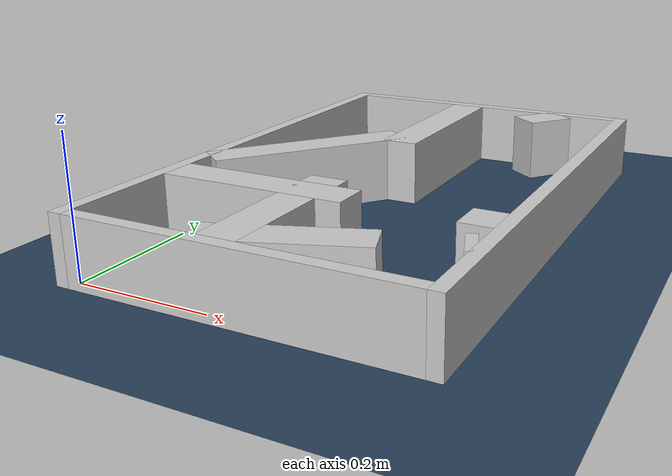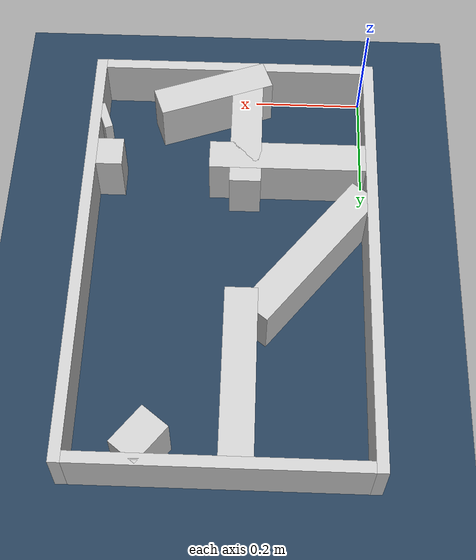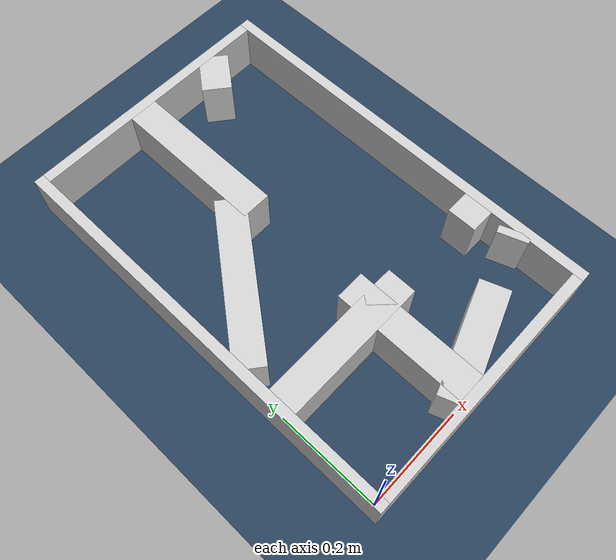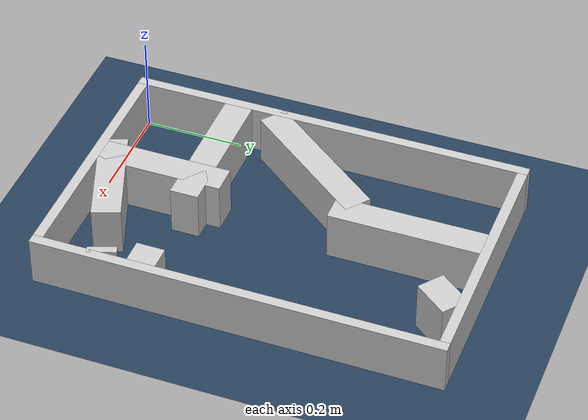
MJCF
<?xml version="1.0" ?>
<mujoco model="generated_real_template">
  <compiler angle="degree"/>
  <option timestep="0.002" integrator="implicitfast" iterations="100" cone="elliptic"/>
  <default>
    <geom density="1"/>
  </default>
  <asset>
    <texture builtin="gradient" height="3072" rgb1="0.3 0.5 0.7" rgb2="0 0 0" type="skybox" width="512"/>
    <texture builtin="checker" height="300" mark="edge" markrgb="0.8 0.8 0.8" name="groundplane" rgb1="0.2 0.3 0.4" rgb2="0.1 0.2 0.3" type="2d" width="300"/>
    <material name="groundplane" reflectance="0.2" texrepeat="5 5" texture="groundplane" texuniform="true"/>
  </asset>
  <worldbody>
    <light dir="0 0 -1" directional="true" pos="0 0 1.5"/>
    <geom name="floor" type="plane" condim="4" friction="0.5 0.005 0.001" material="groundplane" size="0 0 0.05"/>
    <body name="walls">
      <geom name="wall_boundary_left" type="box" condim="4" friction="1.0 0.005 0.0001" rgba="0.8 0.8 0.8 1" pos="-0.010000 0.387500 0.050000" euler="0 0 0.000000" size="0.010000 0.407500 0.050000"/>
      <geom name="wall_boundary_right" type="box" condim="4" friction="1.0 0.005 0.0001" rgba="0.8 0.8 0.8 1" pos="0.500000 0.387500 0.050000" euler="0 0 0.000000" size="0.010000 0.407500 0.050000"/>
      <geom name="wall_boundary_bottom" type="box" condim="4" friction="1.0 0.005 0.0001" rgba="0.8 0.8 0.8 1" pos="0.245000 -0.010000 0.050000" euler="0 0 0.000000" size="0.245000 0.010000 0.050000"/>
      <geom name="wall_boundary_top" type="box" condim="4" friction="1.0 0.005 0.0001" rgba="0.8 0.8 0.8 1" pos="0.245000 0.785000 0.050000" euler="0 0 0.000000" size="0.245000 0.010000 0.050000"/>
      <geom name="wall_inner_1_1" type="box" condim="4" friction="1.0 0.005 0.0001" rgba="0.8 0.8 0.8 1" pos="0.218073 0.127909 0.050000" euler="0 0 90.000000" size="0.127909 0.028500 0.050000"/>
      <geom name="wall_inner_1_2" type="box" condim="4" friction="1.0 0.005 0.0001" rgba="0.8 0.8 0.8 1" pos="0.218073 0.624838 0.050000" euler="0 0 90.000000" size="0.150162 0.028500 0.050000"/>
      <geom name="wall_inner_2_1" type="box" condim="4" friction="1.0 0.005 0.0001" rgba="0.8 0.8 0.8 1" pos="0.482818 0.116382 0.050000" euler="0 0 -160.025194" size="0.007641 0.028500 0.050000"/>
      <geom name="wall_inner_2_2" type="box" condim="4" friction="1.0 0.005 0.0001" rgba="0.8 0.8 0.8 1" pos="0.283427 0.043909 0.050000" euler="0 0 -160.025194" size="0.108671 0.028500 0.050000"/>
      <geom name="wall_inner_3_1" type="box" condim="4" friction="1.0 0.005 0.0001" rgba="0.8 0.8 0.8 1" pos="0.142053 0.198240 0.050000" euler="0 0 0.000000" size="0.142053 0.028500 0.050000"/>
      <geom name="wall_inner_3_2" type="box" condim="4" friction="1.0 0.005 0.0001" rgba="0.8 0.8 0.8 1" pos="0.466248 0.198240 0.050000" euler="0 0 0.000000" size="0.023752 0.028500 0.050000"/>
      <geom name="wall_inner_4_1" type="box" condim="4" friction="1.0 0.005 0.0001" rgba="0.8 0.8 0.8 1" pos="0.099098 0.395141 0.050000" euler="0 0 51.907775" size="0.156691 0.028500 0.050000"/>
      <geom name="wall_inner_4_2" type="box" condim="4" friction="1.0 0.005 0.0001" rgba="0.8 0.8 0.8 1" pos="0.372086 0.743393 0.050000" euler="0 0 51.907775" size="0.040160 0.028500 0.050000"/>
    </body>
  </worldbody>
</mujoco>
